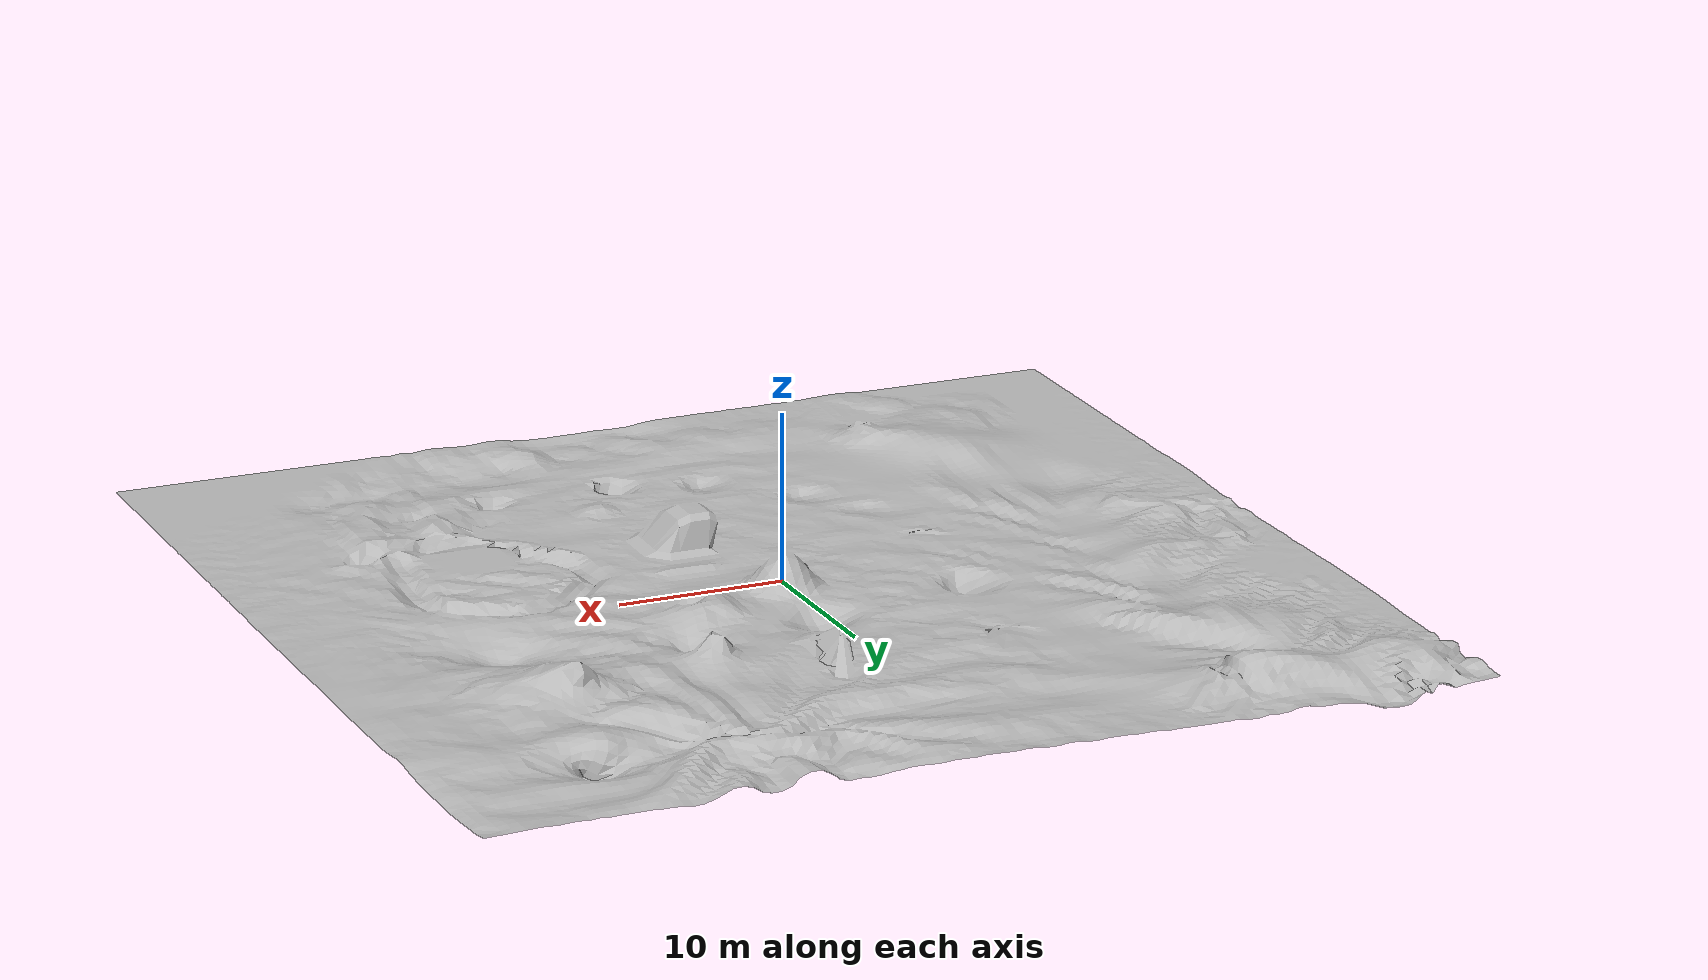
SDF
<?xml version="1.0" ?>
<sdf version="1.7">
  <model name="custom_ground">
    <static>true</static>
    <link name="link">
      <visual name="visual">
        <geometry>
          <mesh>
            <uri>file:///home/rob/mmtr_ws/src/mmtr_description/worlds/terrain/meshes/map.dae</uri>
          </mesh>
        </geometry>
      </visual>

      <collision name="collision">
        <geometry>
          <mesh>
            <uri>file:///home/rob/mmtr_ws/src/mmtr_description/worlds/terrain/meshes/map.dae</uri>
          </mesh>
        </geometry>
      </collision>
    </link>
  </model>
</sdf>
